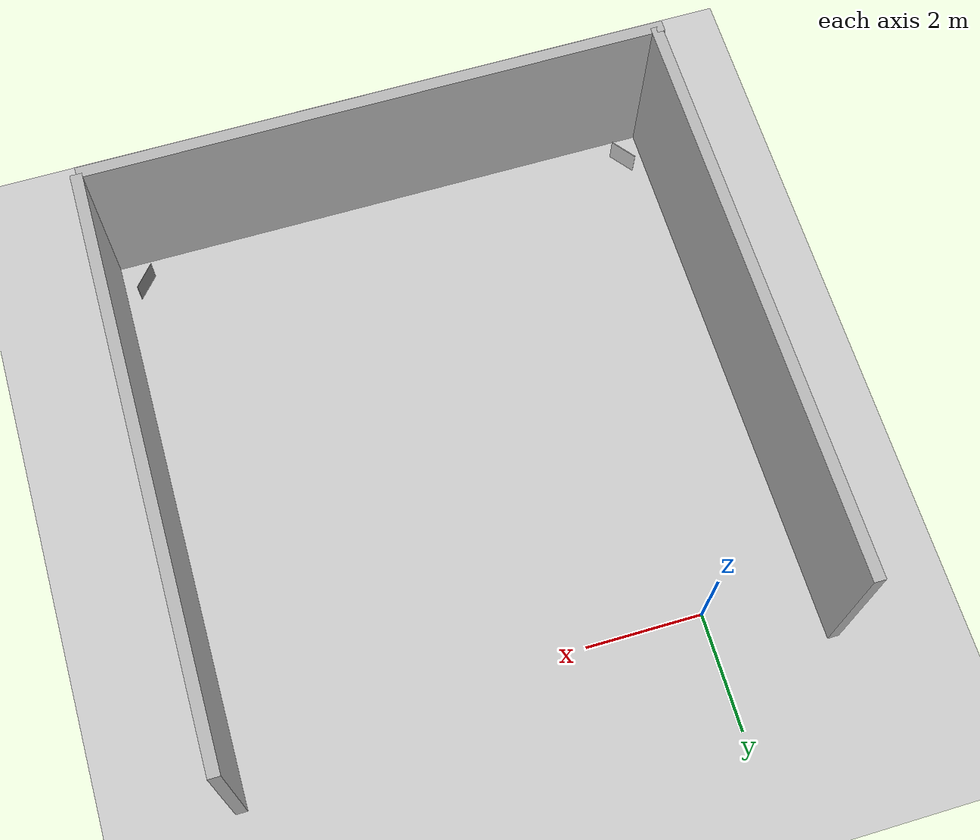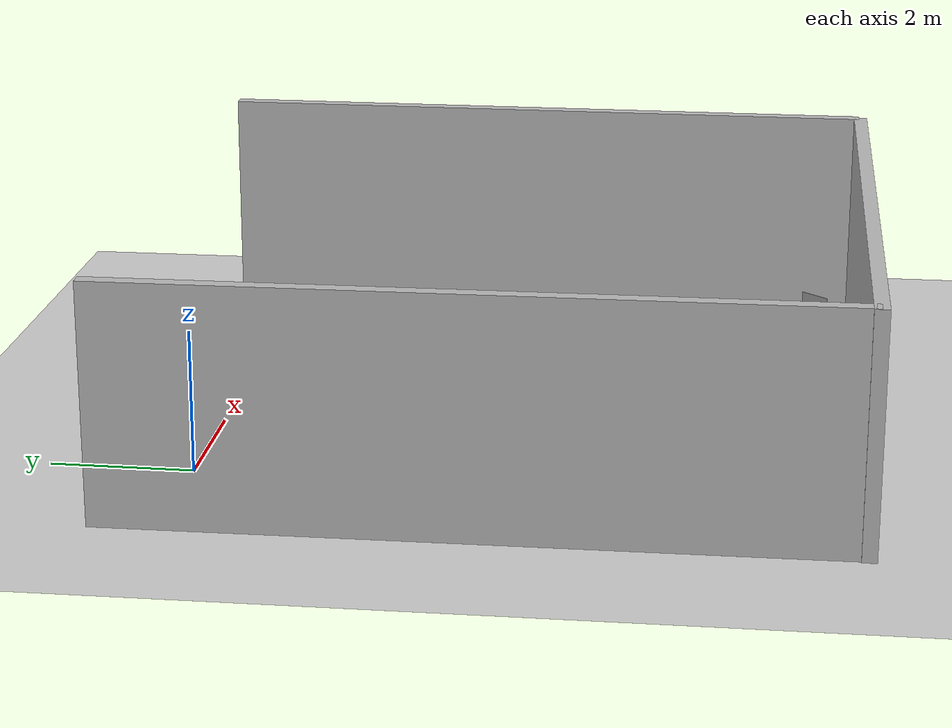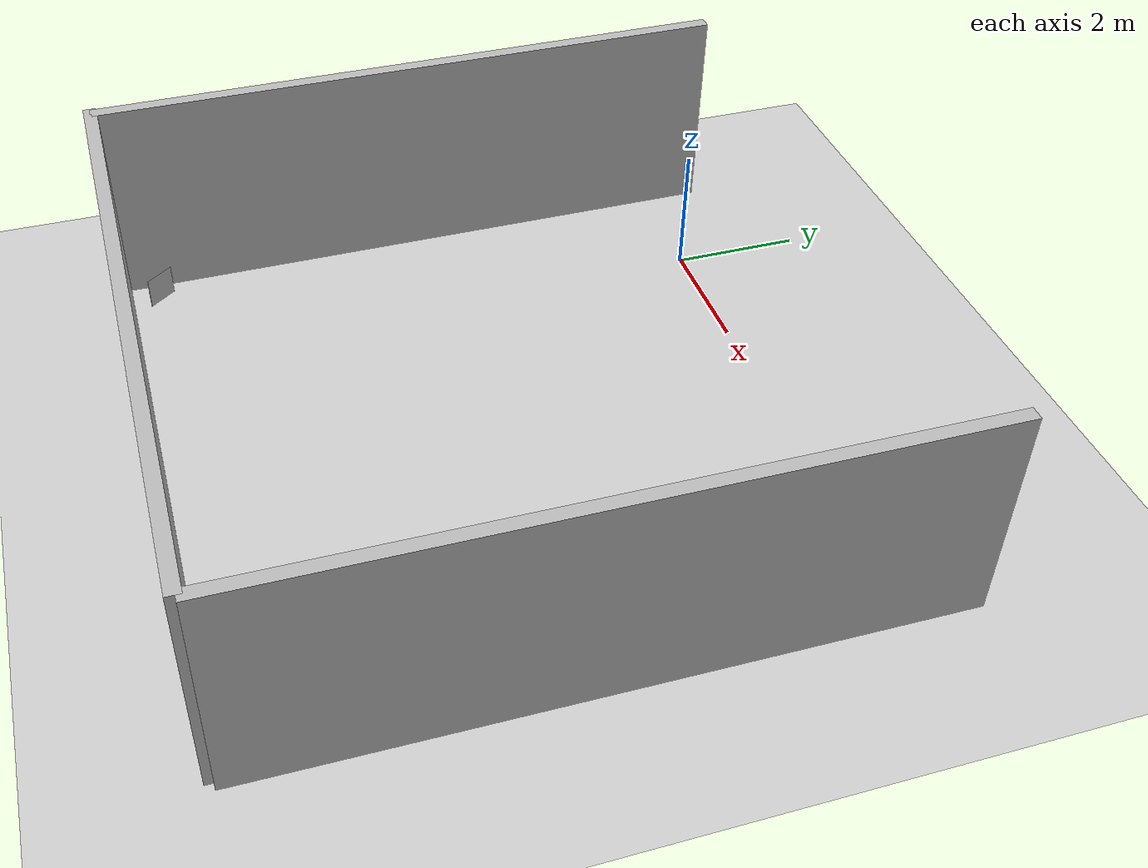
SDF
<sdf version="1.5">
 <world name="default">
  <model name="ground_plane">
   <static>1</static>
   <link name="link">
    <collision name="collision">
     <geometry><plane><normal>0 0 1</normal><size>100 100</size></plane></geometry>
     <surface><friction><ode><mu>100</mu><mu2>50</mu2></ode></friction></surface>
    </collision>
    <visual name="visual">
     <cast_shadows>0</cast_shadows>
     <geometry><plane><normal>0 0 1</normal><size>100 100</size></plane></geometry>
     <material>
      <script><uri>file://media/materials/scripts/gazebo.material</uri><name>Gazebo/Grey</name></script>
     </material>
    </visual>
   </link>
  </model>
  <model name="cutout_wall_0">
   <static>1</static>
   <link name="link">
    <pose>0 0 1.4 0 -0 0</pose>
    <collision name="collision">
     <geometry><box><size>10 0.2 3.8</size></box></geometry>
     <surface>
      <contact>
       <collide_without_contact>1</collide_without_contact>
       <collide_without_contact_bitmask>2</collide_without_contact_bitmask>
      </contact>
     </surface>
    </collision>
    <visual name="visual">
     <cast_shadows>0</cast_shadows>
     <geometry><box><size>10 0.2 3.8</size></box></geometry>
     <material>
      <script>
       <uri>model://cutout_wall/materials/scripts</uri>
       <uri>model://cutout_wall/materials/textures</uri>
       <name>drc_practice/cutout_wall</name>
      </script>
     </material>
    </visual>
    <sensor name="mud_contact" type="contact">
     <always_on>1</always_on>
     <update_rate>1000</update_rate>
     <contact><collision>collision</collision><topic>__default_topic__</topic></contact>
    </sensor>
   </link>
   <plugin name="gazebo_mud" filename="libMudPlugin.so">
    <contact_sensor_name>link/mud_contact</contact_sensor_name>
    <stiffness>0.0</stiffness>
    <damping>40.0</damping>
    <contact_surface_bitmask>2</contact_surface_bitmask>
    <link_name>drill::link</link_name>
   </plugin>
   <pose>-1.94126 -4.0429 0 0 -0 1.57507</pose>
  </model>
  <model name="cutout_wall_1">
   <static>1</static>
   <link name="link">
    <pose>0 0 1.4 0 -0 0</pose>
    <collision name="collision">
     <geometry><box><size>10 0.2 3.8</size></box></geometry>
     <surface>
      <contact>
       <collide_without_contact>1</collide_without_contact>
       <collide_without_contact_bitmask>2</collide_without_contact_bitmask>
      </contact>
     </surface>
    </collision>
    <visual name="visual">
     <cast_shadows>0</cast_shadows>
     <geometry><box><size>10 0.2 3.8</size></box></geometry>
     <material>
      <script>
       <uri>model://cutout_wall/materials/scripts</uri>
       <uri>model://cutout_wall/materials/textures</uri>
       <name>drc_practice/cutout_wall</name>
      </script>
     </material>
    </visual>
    <sensor name="mud_contact" type="contact">
     <always_on>1</always_on>
     <update_rate>1000</update_rate>
     <contact><collision>collision</collision><topic>__default_topic__</topic></contact>
    </sensor>
   </link>
   <plugin name="gazebo_mud" filename="libMudPlugin.so">
    <contact_sensor_name>link/mud_contact</contact_sensor_name>
    <stiffness>0.0</stiffness>
    <damping>40.0</damping>
    <contact_surface_bitmask>2</contact_surface_bitmask>
    <link_name>drill::link</link_name>
   </plugin>
   <pose>2.95415 -9.03799 0 0 -0 0</pose>
  </model>
  <model name="cutout_wall_2">
   <static>1</static>
   <link name="link">
    <pose>0 0 1.4 0 -0 0</pose>
    <collision name="collision">
     <geometry><box><size>10 0.2 3.8</size></box></geometry>
     <surface>
      <contact>
       <collide_without_contact>1</collide_without_contact>
       <collide_without_contact_bitmask>2</collide_without_contact_bitmask>
      </contact>
     </surface>
    </collision>
    <visual name="visual">
     <cast_shadows>0</cast_shadows>
     <geometry><box><size>10 0.2 3.8</size></box></geometry>
     <material>
      <script>
       <uri>model://cutout_wall/materials/scripts</uri>
       <uri>model://cutout_wall/materials/textures</uri>
       <name>drc_practice/cutout_wall</name>
      </script>
     </material>
    </visual>
    <sensor name="mud_contact" type="contact">
     <always_on>1</always_on>
     <update_rate>1000</update_rate>
     <contact><collision>collision</collision><topic>__default_topic__</topic></contact>
    </sensor>
   </link>
   <plugin name="gazebo_mud" filename="libMudPlugin.so">
    <contact_sensor_name>link/mud_contact</contact_sensor_name>
    <stiffness>0.0</stiffness>
    <damping>40.0</damping>
    <contact_surface_bitmask>2</contact_surface_bitmask>
    <link_name>drill::link</link_name>
   </plugin>
   <pose>7.99859 -4.01588 0 0 0 -1.57885</pose>
  </model>
  <model name="gate_number_2">
   <pose>7.45307 -8.43446 0.25 0 0 -0.710275</pose>
   <static>1</static>
   <link name="link">
    <collision name="collision"><geometry><box><size>0.01 0.5 0.5</size></box></geometry></collision>
    <visual name="visual">
     <geometry><mesh><uri>model://gate_number_2/meshes/gate_number_2.dae</uri></mesh></geometry>
    </visual>
   </link>
  </model>
  <model name="gate_number_3">
   <pose>-1.43156 -8.46985 0.25 0 -0 0.656407</pose>
   <static>1</static>
   <link name="link">
    <collision name="collision"><geometry><box><size>0.01 0.5 0.5</size></box></geometry></collision>
    <visual name="visual">
     <geometry><mesh><uri>model://gate_number_3/meshes/gate_number_3.dae</uri></mesh></geometry>
    </visual>
   </link>
  </model>
 </world>
</sdf>
